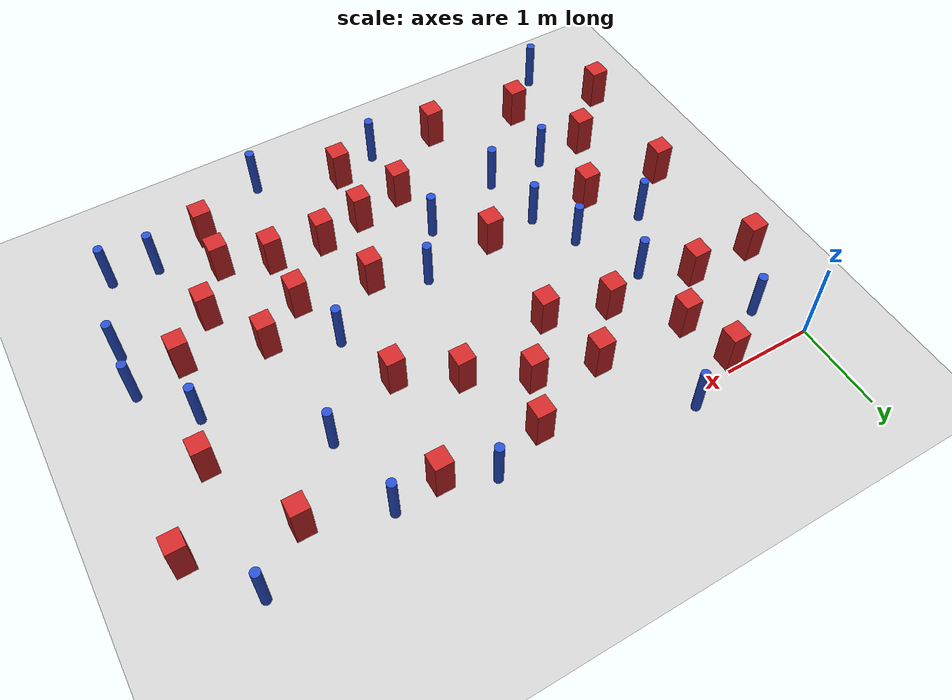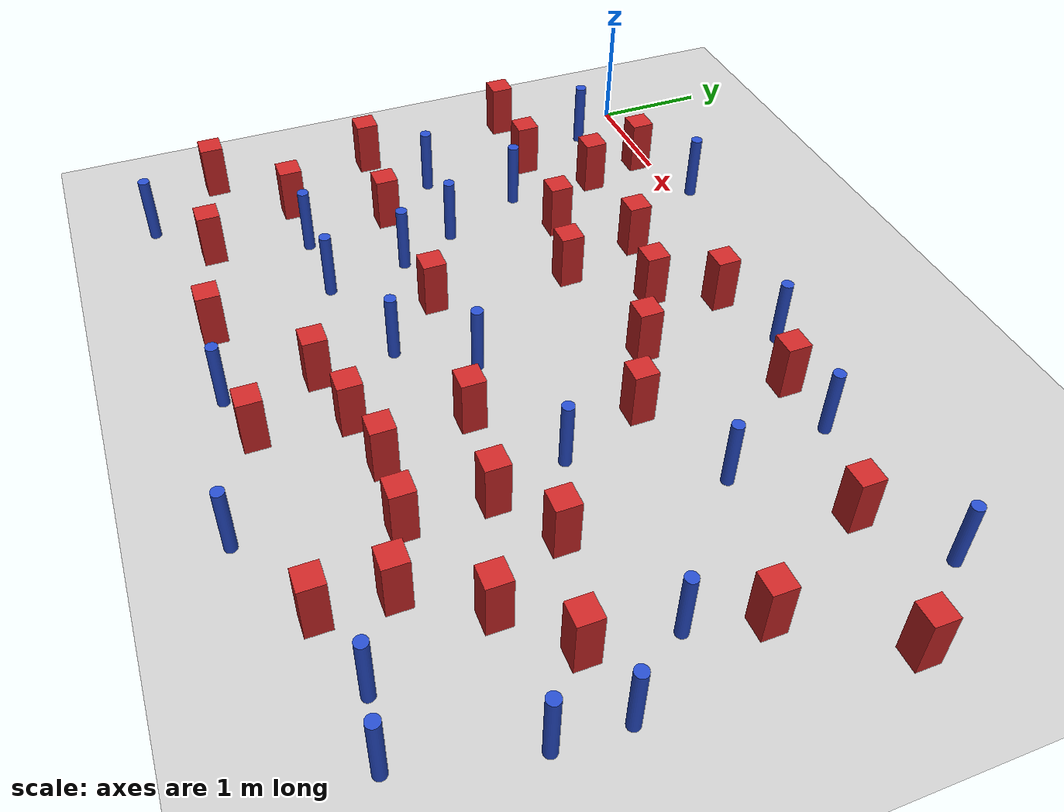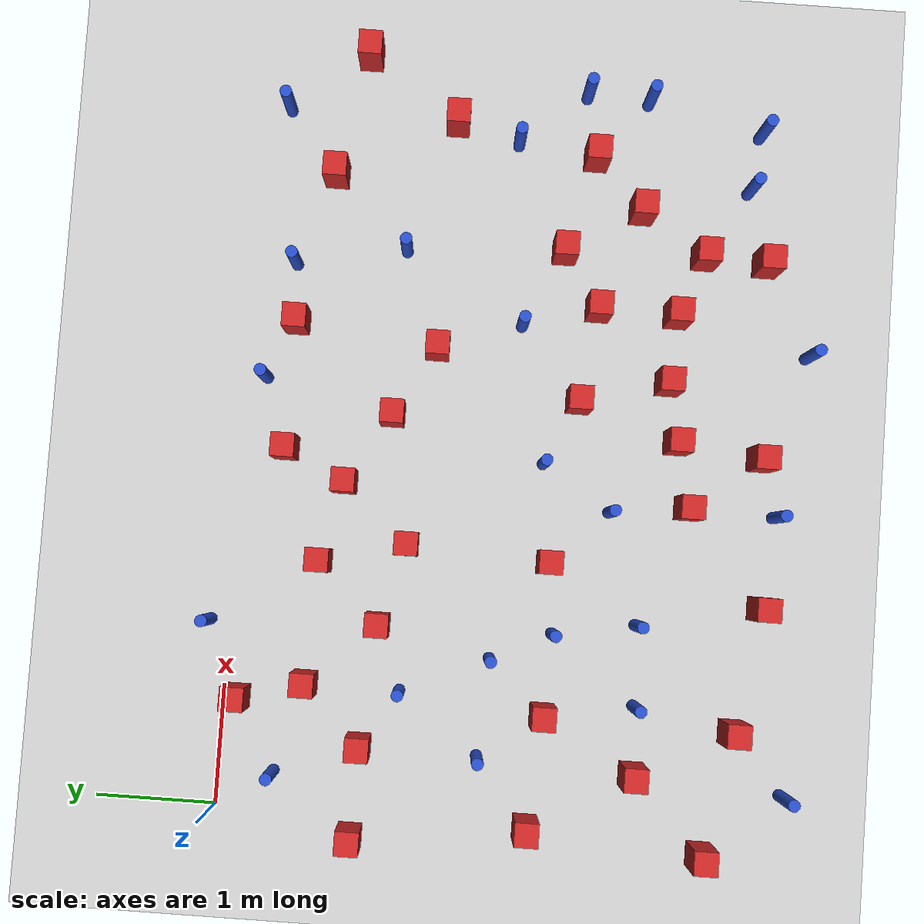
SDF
<sdf version="1.6">
 <world name="default">
  <model name="ground_plane">
   <static>1</static>
   <link name="link">
    <collision name="collision">
     <geometry><plane><normal>0 0 1</normal><size>100 100</size></plane></geometry>
     <surface><friction><ode><mu>100</mu><mu2>50</mu2></ode></friction></surface>
    </collision>
    <visual name="visual">
     <cast_shadows>0</cast_shadows>
     <geometry><plane><normal>0 0 1</normal><size>100 100</size></plane></geometry>
     <material>
      <ambient>1.0 1.0 1.0 1.0</ambient>
      <diffuse>0.8 0.8 0.8 1.0</diffuse>
      <specular>0.01 0.01 0.01 1.000000</specular>
     </material>
    </visual>
   </link>
  </model>
  <model name="NamedLocations">
   <static>true</static>
   <link name="DefaultStart"><pose>8.5 0 0 0 0 3.14</pose></link>
  </model>
  <model name="square_post_obstacle3">
   <static>true</static>
   <pose>2.75395827223 -3.80384737645 1.91545236811e-07 -7.35059704564e-06 1.12565212e-07 2.39332434364e-05</pose>
   <link name="link">
    <pose>0 0 0.25 0 -0 0</pose>
    <inertial>
     <mass>100</mass>
     <inertia>
      <ixx>0.166667</ixx>
      <ixy>0</ixy>
      <ixz>0</ixz>
      <iyy>0.166667</iyy>
      <iyz>0</iyz>
      <izz>0.166667</izz>
     </inertia>
    </inertial>
    <collision name="collision"><geometry><box><size>.2 .2 .5</size></box></geometry></collision>
    <visual name="visual">
     <geometry><box><size>.2 .2 .5</size></box></geometry>
     <material>
      <script><name>Gazebo/Red</name><uri>file://media/materials/scripts/gazebo.material</uri></script>
     </material>
    </visual>
   </link>
  </model>
  <model name="pole_obstacle3">
   <static>true</static>
   <pose>1.05317652892 -1.47863244414 7.38925637345e-09 -8.471706928e-08 1.24976765079e-08 -1.74513093017e-07</pose>
   <link name="link">
    <pose>0 0 0.3 0 -0 0</pose>
    <inertial>
     <mass>1</mass>
     <inertia><ixx>0.145833</ixx><ixy>0</ixy><ixz>0</ixz><iyy>0.145833</iyy><iyz>0</iyz><izz>0.125</izz></inertia>
    </inertial>
    <collision name="collision">
     <geometry><cylinder><radius>0.05</radius><length>.6</length></cylinder></geometry>
    </collision>
    <visual name="visual">
     <geometry><cylinder><radius>0.05</radius><length>.6</length></cylinder></geometry>
     <material>
      <script><name>Gazebo/Blue</name><uri>file://media/materials/scripts/gazebo.material</uri></script>
     </material>
    </visual>
   </link>
  </model>
  <model name="square_post_obstacle14">
   <static>true</static>
   <pose>-0.126441259786 -4.07254027726 1.91545236811e-07 -7.35059704564e-06 1.12565212e-07 2.39332434364e-05</pose>
   <link name="link">
    <pose>0 0 0.25 0 -0 0</pose>
    <inertial>
     <mass>100</mass>
     <inertia>
      <ixx>0.166667</ixx>
      <ixy>0</ixy>
      <ixz>0</ixz>
      <iyy>0.166667</iyy>
      <iyz>0</iyz>
      <izz>0.166667</izz>
     </inertia>
    </inertial>
    <collision name="collision"><geometry><box><size>.2 .2 .5</size></box></geometry></collision>
    <visual name="visual">
     <geometry><box><size>.2 .2 .5</size></box></geometry>
     <material>
      <script><name>Gazebo/Red</name><uri>file://media/materials/scripts/gazebo.material</uri></script>
     </material>
    </visual>
   </link>
  </model>
  <model name="square_post_obstacle16">
   <static>true</static>
   <pose>2.10160960088 -0.730467767537 1.91545236811e-07 -7.35059704564e-06 1.12565212e-07 2.39332434364e-05</pose>
   <link name="link">
    <pose>0 0 0.25 0 -0 0</pose>
    <inertial>
     <mass>100</mass>
     <inertia>
      <ixx>0.166667</ixx>
      <ixy>0</ixy>
      <ixz>0</ixz>
      <iyy>0.166667</iyy>
      <iyz>0</iyz>
      <izz>0.166667</izz>
     </inertia>
    </inertial>
    <collision name="collision"><geometry><box><size>.2 .2 .5</size></box></geometry></collision>
    <visual name="visual">
     <geometry><box><size>.2 .2 .5</size></box></geometry>
     <material>
      <script><name>Gazebo/Red</name><uri>file://media/materials/scripts/gazebo.material</uri></script>
     </material>
    </visual>
   </link>
  </model>
  <model name="pole_obstacle9">
   <static>true</static>
   <pose>4.22010196465 -2.30747923249 7.38925637345e-09 -8.47170692798e-08 1.24976764937e-08 -1.74513093023e-07</pose>
   <link name="link">
    <pose>0 0 0.3 0 -0 0</pose>
    <inertial>
     <mass>1</mass>
     <inertia><ixx>0.145833</ixx><ixy>0</ixy><ixz>0</ixz><iyy>0.145833</iyy><iyz>0</iyz><izz>0.125</izz></inertia>
    </inertial>
    <collision name="collision">
     <geometry><cylinder><radius>0.05</radius><length>.6</length></cylinder></geometry>
    </collision>
    <visual name="visual">
     <geometry><cylinder><radius>0.05</radius><length>.6</length></cylinder></geometry>
     <material>
      <script><name>Gazebo/Blue</name><uri>file://media/materials/scripts/gazebo.material</uri></script>
     </material>
    </visual>
   </link>
  </model>
  <model name="square_post_obstacle20">
   <static>true</static>
   <pose>4.88842204589 -4.35391438542 1.91545236811e-07 -7.35059704564e-06 1.12565212e-07 2.39332434364e-05</pose>
   <link name="link">
    <pose>0 0 0.25 0 -0 0</pose>
    <inertial>
     <mass>100</mass>
     <inertia>
      <ixx>0.166667</ixx>
      <ixy>0</ixy>
      <ixz>0</ixz>
      <iyy>0.166667</iyy>
      <iyz>0</iyz>
      <izz>0.166667</izz>
     </inertia>
    </inertial>
    <collision name="collision"><geometry><box><size>.2 .2 .5</size></box></geometry></collision>
    <visual name="visual">
     <geometry><box><size>.2 .2 .5</size></box></geometry>
     <material>
      <script><name>Gazebo/Red</name><uri>file://media/materials/scripts/gazebo.material</uri></script>
     </material>
    </visual>
   </link>
  </model>
  <model name="pole_obstacle14">
   <static>true</static>
   <pose>1.62010785951 -2.73099493347 7.38925637345e-09 -8.47170692799e-08 1.24976765053e-08 -1.74513093017e-07</pose>
   <link name="link">
    <pose>0 0 0.3 0 -0 0</pose>
    <inertial>
     <mass>1</mass>
     <inertia><ixx>0.145833</ixx><ixy>0</ixy><ixz>0</ixz><iyy>0.145833</iyy><iyz>0</iyz><izz>0.125</izz></inertia>
    </inertial>
    <collision name="collision">
     <geometry><cylinder><radius>0.05</radius><length>.6</length></cylinder></geometry>
    </collision>
    <visual name="visual">
     <geometry><cylinder><radius>0.05</radius><length>.6</length></cylinder></geometry>
     <material>
      <script><name>Gazebo/Blue</name><uri>file://media/materials/scripts/gazebo.material</uri></script>
     </material>
    </visual>
   </link>
  </model>
  <model name="square_post_obstacle29">
   <static>true</static>
   <pose>2.28679880018 -1.4551265204 1.91545236811e-07 -7.35059704564e-06 1.12565212e-07 2.39332434364e-05</pose>
   <link name="link">
    <pose>0 0 0.25 0 -0 0</pose>
    <inertial>
     <mass>100</mass>
     <inertia>
      <ixx>0.166667</ixx>
      <ixy>0</ixy>
      <ixz>0</ixz>
      <iyy>0.166667</iyy>
      <iyz>0</iyz>
      <izz>0.166667</izz>
     </inertia>
    </inertial>
    <collision name="collision"><geometry><box><size>.2 .2 .5</size></box></geometry></collision>
    <visual name="visual">
     <geometry><box><size>.2 .2 .5</size></box></geometry>
     <material>
      <script><name>Gazebo/Red</name><uri>file://media/materials/scripts/gazebo.material</uri></script>
     </material>
    </visual>
   </link>
  </model>
  <model name="square_post_obstacle30">
   <static>true</static>
   <pose>3.59892521705 -2.82433107518 1.91545236811e-07 -7.35059704564e-06 1.12565212e-07 2.39332434364e-05</pose>
   <link name="link">
    <pose>0 0 0.25 0 -0 0</pose>
    <inertial>
     <mass>100</mass>
     <inertia>
      <ixx>0.166667</ixx>
      <ixy>0</ixy>
      <ixz>0</ixz>
      <iyy>0.166667</iyy>
      <iyz>0</iyz>
      <izz>0.166667</izz>
     </inertia>
    </inertial>
    <collision name="collision"><geometry><box><size>.2 .2 .5</size></box></geometry></collision>
    <visual name="visual">
     <geometry><box><size>.2 .2 .5</size></box></geometry>
     <material>
      <script><name>Gazebo/Red</name><uri>file://media/materials/scripts/gazebo.material</uri></script>
     </material>
    </visual>
   </link>
  </model>
  <model name="square_post_obstacle45">
   <static>true</static>
   <pose>4.40279567524 -2.94008610002 1.91545236811e-07 -7.35059704564e-06 1.12565212e-07 2.39332434364e-05</pose>
   <link name="link">
    <pose>0 0 0.25 0 -0 0</pose>
    <inertial>
     <mass>100</mass>
     <inertia>
      <ixx>0.166667</ixx>
      <ixy>0</ixy>
      <ixz>0</ixz>
      <iyy>0.166667</iyy>
      <iyz>0</iyz>
      <izz>0.166667</izz>
     </inertia>
    </inertial>
    <collision name="collision"><geometry><box><size>.2 .2 .5</size></box></geometry></collision>
    <visual name="visual">
     <geometry><box><size>.2 .2 .5</size></box></geometry>
     <material>
      <script><name>Gazebo/Red</name><uri>file://media/materials/scripts/gazebo.material</uri></script>
     </material>
    </visual>
   </link>
  </model>
  <model name="square_post_obstacle47">
   <static>true</static>
   <pose>3.21047288335 -4.40014790419 1.91545236811e-07 -7.35059704564e-06 1.12565212e-07 2.39332434364e-05</pose>
   <link name="link">
    <pose>0 0 0.25 0 -0 0</pose>
    <inertial>
     <mass>100</mass>
     <inertia>
      <ixx>0.166667</ixx>
      <ixy>0</ixy>
      <ixz>0</ixz>
      <iyy>0.166667</iyy>
      <iyz>0</iyz>
      <izz>0.166667</izz>
     </inertia>
    </inertial>
    <collision name="collision"><geometry><box><size>.2 .2 .5</size></box></geometry></collision>
    <visual name="visual">
     <geometry><box><size>.2 .2 .5</size></box></geometry>
     <material>
      <script><name>Gazebo/Red</name><uri>file://media/materials/scripts/gazebo.material</uri></script>
     </material>
    </visual>
   </link>
  </model>
  <model name="pole_obstacle54">
   <static>true</static>
   <pose>0.40254618389 -4.73265599026 7.38925637345e-09 -8.471706928e-08 1.24976765079e-08 -1.74513093015e-07</pose>
   <link name="link">
    <pose>0 0 0.3 0 -0 0</pose>
    <inertial>
     <mass>1</mass>
     <inertia><ixx>0.145833</ixx><ixy>0</ixy><ixz>0</ixz><iyy>0.145833</iyy><iyz>0</iyz><izz>0.125</izz></inertia>
    </inertial>
    <collision name="collision">
     <geometry><cylinder><radius>0.05</radius><length>.6</length></cylinder></geometry>
    </collision>
    <visual name="visual">
     <geometry><cylinder><radius>0.05</radius><length>.6</length></cylinder></geometry>
     <material>
      <script><name>Gazebo/Blue</name><uri>file://media/materials/scripts/gazebo.material</uri></script>
     </material>
    </visual>
   </link>
  </model>
  <model name="square_post_obstacle61">
   <static>true</static>
   <pose>3.30429058306 -3.67918713361 1.91545236811e-07 -7.35059704564e-06 1.12565212e-07 2.39332434364e-05</pose>
   <link name="link">
    <pose>0 0 0.25 0 -0 0</pose>
    <inertial>
     <mass>100</mass>
     <inertia>
      <ixx>0.166667</ixx>
      <ixy>0</ixy>
      <ixz>0</ixz>
      <iyy>0.166667</iyy>
      <iyz>0</iyz>
      <izz>0.166667</izz>
     </inertia>
    </inertial>
    <collision name="collision"><geometry><box><size>.2 .2 .5</size></box></geometry></collision>
    <visual name="visual">
     <geometry><box><size>.2 .2 .5</size></box></geometry>
     <material>
      <script><name>Gazebo/Red</name><uri>file://media/materials/scripts/gazebo.material</uri></script>
     </material>
    </visual>
   </link>
  </model>
  <model name="square_post_obstacle63">
   <static>true</static>
   <pose>4.8823091956 -2.62463507751 1.91545236811e-07 -7.35059704564e-06 1.12565212e-07 2.39332434364e-05</pose>
   <link name="link">
    <pose>0 0 0.25 0 -0 0</pose>
    <inertial>
     <mass>100</mass>
     <inertia>
      <ixx>0.166667</ixx>
      <ixy>0</ixy>
      <ixz>0</ixz>
      <iyy>0.166667</iyy>
      <iyz>0</iyz>
      <izz>0.166667</izz>
     </inertia>
    </inertial>
    <collision name="collision"><geometry><box><size>.2 .2 .5</size></box></geometry></collision>
    <visual name="visual">
     <geometry><box><size>.2 .2 .5</size></box></geometry>
     <material>
      <script><name>Gazebo/Red</name><uri>file://media/materials/scripts/gazebo.material</uri></script>
     </material>
    </visual>
   </link>
  </model>
  <model name="pole_obstacle61">
   <static>true</static>
   <pose>1.06151670254 -3.45658894401 7.38925637345e-09 -8.47170692799e-08 1.24976765053e-08 -1.74513093017e-07</pose>
   <link name="link">
    <pose>0 0 0.3 0 -0 0</pose>
    <inertial>
     <mass>1</mass>
     <inertia><ixx>0.145833</ixx><ixy>0</ixy><ixz>0</ixz><iyy>0.145833</iyy><iyz>0</iyz><izz>0.125</izz></inertia>
    </inertial>
    <collision name="collision">
     <geometry><cylinder><radius>0.05</radius><length>.6</length></cylinder></geometry>
    </collision>
    <visual name="visual">
     <geometry><cylinder><radius>0.05</radius><length>.6</length></cylinder></geometry>
     <material>
      <script><name>Gazebo/Blue</name><uri>file://media/materials/scripts/gazebo.material</uri></script>
     </material>
    </visual>
   </link>
  </model>
  <model name="pole_obstacle78">
   <static>true</static>
   <pose>6.00725913123 -4.2516068617 7.38925637345e-09 -8.47170692796e-08 1.24976764786e-08 -1.74513093032e-07</pose>
   <link name="link">
    <pose>0 0 0.3 0 -0 0</pose>
    <inertial>
     <mass>1</mass>
     <inertia><ixx>0.145833</ixx><ixy>0</ixy><ixz>0</ixz><iyy>0.145833</iyy><iyz>0</iyz><izz>0.125</izz></inertia>
    </inertial>
    <collision name="collision">
     <geometry><cylinder><radius>0.05</radius><length>.6</length></cylinder></geometry>
    </collision>
    <visual name="visual">
     <geometry><cylinder><radius>0.05</radius><length>.6</length></cylinder></geometry>
     <material>
      <script><name>Gazebo/Blue</name><uri>file://media/materials/scripts/gazebo.material</uri></script>
     </material>
    </visual>
   </link>
  </model>
  <model name="pole_obstacle80">
   <static>true</static>
   <pose>2.67661399163 -3.15027102554 7.38925637345e-09 -8.47170692798e-08 1.24976764939e-08 -1.74513093025e-07</pose>
   <link name="link">
    <pose>0 0 0.3 0 -0 0</pose>
    <inertial>
     <mass>1</mass>
     <inertia><ixx>0.145833</ixx><ixy>0</ixy><ixz>0</ixz><iyy>0.145833</iyy><iyz>0</iyz><izz>0.125</izz></inertia>
    </inertial>
    <collision name="collision">
     <geometry><cylinder><radius>0.05</radius><length>.6</length></cylinder></geometry>
    </collision>
    <visual name="visual">
     <geometry><cylinder><radius>0.05</radius><length>.6</length></cylinder></geometry>
     <material>
      <script><name>Gazebo/Blue</name><uri>file://media/materials/scripts/gazebo.material</uri></script>
     </material>
    </visual>
   </link>
  </model>
  <model name="square_post_obstacle81">
   <static>true</static>
   <pose>3.80647697238 -3.57520616381 1.91545236811e-07 -7.35059704564e-06 1.12565212e-07 2.39332434364e-05</pose>
   <link name="link">
    <pose>0 0 0.25 0 -0 0</pose>
    <inertial>
     <mass>100</mass>
     <inertia>
      <ixx>0.166667</ixx>
      <ixy>0</ixy>
      <ixz>0</ixz>
      <iyy>0.166667</iyy>
      <iyz>0</iyz>
      <izz>0.166667</izz>
     </inertia>
    </inertial>
    <collision name="collision"><geometry><box><size>.2 .2 .5</size></box></geometry></collision>
    <visual name="visual">
     <geometry><box><size>.2 .2 .5</size></box></geometry>
     <material>
      <script><name>Gazebo/Red</name><uri>file://media/materials/scripts/gazebo.material</uri></script>
     </material>
    </visual>
   </link>
  </model>
  <model name="pole_obstacle88">
   <static>true</static>
   <pose>3.62582252791 -0.160647659627 7.38925637345e-09 -8.471706928e-08 1.24976765208e-08 -1.7451309301e-07</pose>
   <link name="link">
    <pose>0 0 0.3 0 -0 0</pose>
    <inertial>
     <mass>1</mass>
     <inertia><ixx>0.145833</ixx><ixy>0</ixy><ixz>0</ixz><iyy>0.145833</iyy><iyz>0</iyz><izz>0.125</izz></inertia>
    </inertial>
    <collision name="collision">
     <geometry><cylinder><radius>0.05</radius><length>.6</length></cylinder></geometry>
    </collision>
    <visual name="visual">
     <geometry><cylinder><radius>0.05</radius><length>.6</length></cylinder></geometry>
     <material>
      <script><name>Gazebo/Blue</name><uri>file://media/materials/scripts/gazebo.material</uri></script>
     </material>
    </visual>
   </link>
  </model>
  <model name="square_post_obstacle82">
   <static>true</static>
   <pose>6.47311847507 -0.852878946086 1.91545236811e-07 -7.35059704564e-06 1.12565212e-07 2.39332434364e-05</pose>
   <link name="link">
    <pose>0 0 0.25 0 -0 0</pose>
    <inertial>
     <mass>100</mass>
     <inertia>
      <ixx>0.166667</ixx>
      <ixy>0</ixy>
      <ixz>0</ixz>
      <iyy>0.166667</iyy>
      <iyz>0</iyz>
      <izz>0.166667</izz>
     </inertia>
    </inertial>
    <collision name="collision"><geometry><box><size>.2 .2 .5</size></box></geometry></collision>
    <visual name="visual">
     <geometry><box><size>.2 .2 .5</size></box></geometry>
     <material>
      <script><name>Gazebo/Red</name><uri>file://media/materials/scripts/gazebo.material</uri></script>
     </material>
    </visual>
   </link>
  </model>
  <model name="square_post_obstacle83">
   <static>true</static>
   <pose>5.41593569924 -0.632262099924 1.91545236811e-07 -7.35059704564e-06 1.12565212e-07 2.39332434364e-05</pose>
   <link name="link">
    <pose>0 0 0.25 0 -0 0</pose>
    <inertial>
     <mass>100</mass>
     <inertia>
      <ixx>0.166667</ixx>
      <ixy>0</ixy>
      <ixz>0</ixz>
      <iyy>0.166667</iyy>
      <iyz>0</iyz>
      <izz>0.166667</izz>
     </inertia>
    </inertial>
    <collision name="collision"><geometry><box><size>.2 .2 .5</size></box></geometry></collision>
    <visual name="visual">
     <geometry><box><size>.2 .2 .5</size></box></geometry>
     <material>
      <script><name>Gazebo/Red</name><uri>file://media/materials/scripts/gazebo.material</uri></script>
     </material>
    </visual>
   </link>
  </model>
  <model name="pole_obstacle104">
   <static>true</static>
   <pose>3.05050505265 -2.56427551376 7.38925637345e-09 -8.47170692798e-08 1.24976764939e-08 -1.74513093025e-07</pose>
   <link name="link">
    <pose>0 0 0.3 0 -0 0</pose>
    <inertial>
     <mass>1</mass>
     <inertia><ixx>0.145833</ixx><ixy>0</ixy><ixz>0</ixz><iyy>0.145833</iyy><iyz>0</iyz><izz>0.125</izz></inertia>
    </inertial>
    <collision name="collision">
     <geometry><cylinder><radius>0.05</radius><length>.6</length></cylinder></geometry>
    </collision>
    <visual name="visual">
     <geometry><cylinder><radius>0.05</radius><length>.6</length></cylinder></geometry>
     <material>
      <script><name>Gazebo/Blue</name><uri>file://media/materials/scripts/gazebo.material</uri></script>
     </material>
    </visual>
   </link>
  </model>
  <model name="square_post_obstacle93">
   <static>true</static>
   <pose>-0.00147185129505 -2.60536252672 1.91545236811e-07 -7.35059704564e-06 1.12565212e-07 2.39332434364e-05</pose>
   <link name="link">
    <pose>0 0 0.25 0 -0 0</pose>
    <inertial>
     <mass>100</mass>
     <inertia>
      <ixx>0.166667</ixx>
      <ixy>0</ixy>
      <ixz>0</ixz>
      <iyy>0.166667</iyy>
      <iyz>0</iyz>
      <izz>0.166667</izz>
     </inertia>
    </inertial>
    <collision name="collision"><geometry><box><size>.2 .2 .5</size></box></geometry></collision>
    <visual name="visual">
     <geometry><box><size>.2 .2 .5</size></box></geometry>
     <material>
      <script><name>Gazebo/Red</name><uri>file://media/materials/scripts/gazebo.material</uri></script>
     </material>
    </visual>
   </link>
  </model>
  <model name="pole_obstacle112">
   <static>true</static>
   <pose>4.79962670155 -1.27875734468 7.38925637345e-09 -8.471706928e-08 1.24976765134e-08 -1.74513093015e-07</pose>
   <link name="link">
    <pose>0 0 0.3 0 -0 0</pose>
    <inertial>
     <mass>1</mass>
     <inertia><ixx>0.145833</ixx><ixy>0</ixy><ixz>0</ixz><iyy>0.145833</iyy><iyz>0</iyz><izz>0.125</izz></inertia>
    </inertial>
    <collision name="collision">
     <geometry><cylinder><radius>0.05</radius><length>.6</length></cylinder></geometry>
    </collision>
    <visual name="visual">
     <geometry><cylinder><radius>0.05</radius><length>.6</length></cylinder></geometry>
     <material>
      <script><name>Gazebo/Blue</name><uri>file://media/materials/scripts/gazebo.material</uri></script>
     </material>
    </visual>
   </link>
  </model>
  <model name="square_post_obstacle105">
   <static>true</static>
   <pose>0.934850646681 -2.68833035858 1.91545236811e-07 -7.35059704564e-06 1.12565212e-07 2.39332434364e-05</pose>
   <link name="link">
    <pose>0 0 0.25 0 -0 0</pose>
    <inertial>
     <mass>100</mass>
     <inertia>
      <ixx>0.166667</ixx>
      <ixy>0</ixy>
      <ixz>0</ixz>
      <iyy>0.166667</iyy>
      <iyz>0</iyz>
      <izz>0.166667</izz>
     </inertia>
    </inertial>
    <collision name="collision"><geometry><box><size>.2 .2 .5</size></box></geometry></collision>
    <visual name="visual">
     <geometry><box><size>.2 .2 .5</size></box></geometry>
     <material>
      <script><name>Gazebo/Red</name><uri>file://media/materials/scripts/gazebo.material</uri></script>
     </material>
    </visual>
   </link>
  </model>
  <model name="square_post_obstacle106">
   <static>true</static>
   <pose>3.37673102108 -1.26089611449 1.91545236811e-07 -7.35059704564e-06 1.12565212e-07 2.39332434364e-05</pose>
   <link name="link">
    <pose>0 0 0.25 0 -0 0</pose>
    <inertial>
     <mass>100</mass>
     <inertia>
      <ixx>0.166667</ixx>
      <ixy>0</ixy>
      <ixz>0</ixz>
      <iyy>0.166667</iyy>
      <iyz>0</iyz>
      <izz>0.166667</izz>
     </inertia>
    </inertial>
    <collision name="collision"><geometry><box><size>.2 .2 .5</size></box></geometry></collision>
    <visual name="visual">
     <geometry><box><size>.2 .2 .5</size></box></geometry>
     <material>
      <script><name>Gazebo/Red</name><uri>file://media/materials/scripts/gazebo.material</uri></script>
     </material>
    </visual>
   </link>
  </model>
  <model name="pole_obstacle132">
   <static>true</static>
   <pose>1.54226629726 0.156424571578 7.38925637345e-09 -8.471706928e-08 1.24976765118e-08 -1.74513093013e-07</pose>
   <link name="link">
    <pose>0 0 0.3 0 -0 0</pose>
    <inertial>
     <mass>1</mass>
     <inertia><ixx>0.145833</ixx><ixy>0</ixy><ixz>0</ixz><iyy>0.145833</iyy><iyz>0</iyz><izz>0.125</izz></inertia>
    </inertial>
    <collision name="collision">
     <geometry><cylinder><radius>0.05</radius><length>.6</length></cylinder></geometry>
    </collision>
    <visual name="visual">
     <geometry><cylinder><radius>0.05</radius><length>.6</length></cylinder></geometry>
     <material>
      <script><name>Gazebo/Blue</name><uri>file://media/materials/scripts/gazebo.material</uri></script>
     </material>
    </visual>
   </link>
  </model>
  <model name="pole_obstacle136">
   <static>true</static>
   <pose>6.25748823067 -2.74227425131 7.38925637345e-09 -8.47170692798e-08 1.24976764937e-08 -1.74513093023e-07</pose>
   <link name="link">
    <pose>0 0 0.3 0 -0 0</pose>
    <inertial>
     <mass>1</mass>
     <inertia><ixx>0.145833</ixx><ixy>0</ixy><ixz>0</ixz><iyy>0.145833</iyy><iyz>0</iyz><izz>0.125</izz></inertia>
    </inertial>
    <collision name="collision">
     <geometry><cylinder><radius>0.05</radius><length>.6</length></cylinder></geometry>
    </collision>
    <visual name="visual">
     <geometry><cylinder><radius>0.05</radius><length>.6</length></cylinder></geometry>
     <material>
      <script><name>Gazebo/Blue</name><uri>file://media/materials/scripts/gazebo.material</uri></script>
     </material>
    </visual>
   </link>
  </model>
  <model name="square_post_obstacle119">
   <static>true</static>
   <pose>1.59783580984 -1.26061010599 1.91545236811e-07 -7.35059704564e-06 1.12565212e-07 2.39332434364e-05</pose>
   <link name="link">
    <pose>0 0 0.25 0 -0 0</pose>
    <inertial>
     <mass>100</mass>
     <inertia>
      <ixx>0.166667</ixx>
      <ixy>0</ixy>
      <ixz>0</ixz>
      <iyy>0.166667</iyy>
      <iyz>0</iyz>
      <izz>0.166667</izz>
     </inertia>
    </inertial>
    <collision name="collision"><geometry><box><size>.2 .2 .5</size></box></geometry></collision>
    <visual name="visual">
     <geometry><box><size>.2 .2 .5</size></box></geometry>
     <material>
      <script><name>Gazebo/Red</name><uri>file://media/materials/scripts/gazebo.material</uri></script>
     </material>
    </visual>
   </link>
  </model>
  <model name="square_post_obstacle120">
   <static>true</static>
   <pose>3.97312632959 -1.60023943931 1.91545236811e-07 -7.35059704564e-06 1.12565212e-07 2.39332434364e-05</pose>
   <link name="link">
    <pose>0 0 0.25 0 -0 0</pose>
    <inertial>
     <mass>100</mass>
     <inertia>
      <ixx>0.166667</ixx>
      <ixy>0</ixy>
      <ixz>0</ixz>
      <iyy>0.166667</iyy>
      <iyz>0</iyz>
      <izz>0.166667</izz>
     </inertia>
    </inertial>
    <collision name="collision"><geometry><box><size>.2 .2 .5</size></box></geometry></collision>
    <visual name="visual">
     <geometry><box><size>.2 .2 .5</size></box></geometry>
     <material>
      <script><name>Gazebo/Red</name><uri>file://media/materials/scripts/gazebo.material</uri></script>
     </material>
    </visual>
   </link>
  </model>
  <model name="square_post_obstacle125">
   <static>true</static>
   <pose>4.91516569489 -3.82140965831 1.91545236811e-07 -7.35059704564e-06 1.12565212e-07 2.39332434364e-05</pose>
   <link name="link">
    <pose>0 0 0.25 0 -0 0</pose>
    <inertial>
     <mass>100</mass>
     <inertia>
      <ixx>0.166667</ixx>
      <ixy>0</ixy>
      <ixz>0</ixz>
      <iyy>0.166667</iyy>
      <iyz>0</iyz>
      <izz>0.166667</izz>
     </inertia>
    </inertial>
    <collision name="collision"><geometry><box><size>.2 .2 .5</size></box></geometry></collision>
    <visual name="visual">
     <geometry><box><size>.2 .2 .5</size></box></geometry>
     <material>
      <script><name>Gazebo/Red</name><uri>file://media/materials/scripts/gazebo.material</uri></script>
     </material>
    </visual>
   </link>
  </model>
  <model name="square_post_obstacle129">
   <static>true</static>
   <pose>4.11748170014 -0.388991673728 1.91545236811e-07 -7.35059704564e-06 1.12565212e-07 2.39332434364e-05</pose>
   <link name="link">
    <pose>0 0 0.25 0 -0 0</pose>
    <inertial>
     <mass>100</mass>
     <inertia>
      <ixx>0.166667</ixx>
      <ixy>0</ixy>
      <ixz>0</ixz>
      <iyy>0.166667</iyy>
      <iyz>0</iyz>
      <izz>0.166667</izz>
     </inertia>
    </inertial>
    <collision name="collision"><geometry><box><size>.2 .2 .5</size></box></geometry></collision>
    <visual name="visual">
     <geometry><box><size>.2 .2 .5</size></box></geometry>
     <material>
      <script><name>Gazebo/Red</name><uri>file://media/materials/scripts/gazebo.material</uri></script>
     </material>
    </visual>
   </link>
  </model>
  <model name="pole_obstacle142">
   <static>true</static>
   <pose>4.11247169071 -4.75531017231 7.38925637345e-09 -8.47170692796e-08 1.24976764786e-08 -1.74513093032e-07</pose>
   <link name="link">
    <pose>0 0 0.3 0 -0 0</pose>
    <inertial>
     <mass>1</mass>
     <inertia><ixx>0.145833</ixx><ixy>0</ixy><ixz>0</ixz><iyy>0.145833</iyy><iyz>0</iyz><izz>0.125</izz></inertia>
    </inertial>
    <collision name="collision">
     <geometry><cylinder><radius>0.05</radius><length>.6</length></cylinder></geometry>
    </collision>
    <visual name="visual">
     <geometry><cylinder><radius>0.05</radius><length>.6</length></cylinder></geometry>
     <material>
      <script><name>Gazebo/Blue</name><uri>file://media/materials/scripts/gazebo.material</uri></script>
     </material>
    </visual>
   </link>
  </model>
  <model name="square_post_obstacle131">
   <static>true</static>
   <pose>0.917299690091 -0.123818863768 1.91545236811e-07 -7.35059704564e-06 1.12565212e-07 2.39332434364e-05</pose>
   <link name="link">
    <pose>0 0 0.25 0 -0 0</pose>
    <inertial>
     <mass>100</mass>
     <inertia>
      <ixx>0.166667</ixx>
      <ixy>0</ixy>
      <ixz>0</ixz>
      <iyy>0.166667</iyy>
      <iyz>0</iyz>
      <izz>0.166667</izz>
     </inertia>
    </inertial>
    <collision name="collision"><geometry><box><size>.2 .2 .5</size></box></geometry></collision>
    <visual name="visual">
     <geometry><box><size>.2 .2 .5</size></box></geometry>
     <material>
      <script><name>Gazebo/Red</name><uri>file://media/materials/scripts/gazebo.material</uri></script>
     </material>
    </visual>
   </link>
  </model>
  <model name="square_post_obstacle133">
   <static>true</static>
   <pose>1.95138076602 -4.47429494351 1.91545236811e-07 -7.35059704564e-06 1.12565212e-07 2.39332434364e-05</pose>
   <link name="link">
    <pose>0 0 0.25 0 -0 0</pose>
    <inertial>
     <mass>100</mass>
     <inertia>
      <ixx>0.166667</ixx>
      <ixy>0</ixy>
      <ixz>0</ixz>
      <iyy>0.166667</iyy>
      <iyz>0</iyz>
      <izz>0.166667</izz>
     </inertia>
    </inertial>
    <collision name="collision"><geometry><box><size>.2 .2 .5</size></box></geometry></collision>
    <visual name="visual">
     <geometry><box><size>.2 .2 .5</size></box></geometry>
     <material>
      <script><name>Gazebo/Red</name><uri>file://media/materials/scripts/gazebo.material</uri></script>
     </material>
    </visual>
   </link>
  </model>
  <model name="square_post_obstacle135">
   <static>true</static>
   <pose>2.21608066735 -2.66289339956 1.91545236811e-07 -7.35059704564e-06 1.12565212e-07 2.39332434364e-05</pose>
   <link name="link">
    <pose>0 0 0.25 0 -0 0</pose>
    <inertial>
     <mass>100</mass>
     <inertia>
      <ixx>0.166667</ixx>
      <ixy>0</ixy>
      <ixz>0</ixz>
      <iyy>0.166667</iyy>
      <iyz>0</iyz>
      <izz>0.166667</izz>
     </inertia>
    </inertial>
    <collision name="collision"><geometry><box><size>.2 .2 .5</size></box></geometry></collision>
    <visual name="visual">
     <geometry><box><size>.2 .2 .5</size></box></geometry>
     <material>
      <script><name>Gazebo/Red</name><uri>file://media/materials/scripts/gazebo.material</uri></script>
     </material>
    </visual>
   </link>
  </model>
  <model name="pole_obstacle148">
   <static>true</static>
   <pose>1.73933575272 -3.43365108058 7.38925637345e-09 -8.47170692799e-08 1.24976765053e-08 -1.74513093017e-07</pose>
   <link name="link">
    <pose>0 0 0.3 0 -0 0</pose>
    <inertial>
     <mass>1</mass>
     <inertia><ixx>0.145833</ixx><ixy>0</ixy><ixz>0</ixz><iyy>0.145833</iyy><iyz>0</iyz><izz>0.125</izz></inertia>
    </inertial>
    <collision name="collision">
     <geometry><cylinder><radius>0.05</radius><length>.6</length></cylinder></geometry>
    </collision>
    <visual name="visual">
     <geometry><cylinder><radius>0.05</radius><length>.6</length></cylinder></geometry>
     <material>
      <script><name>Gazebo/Blue</name><uri>file://media/materials/scripts/gazebo.material</uri></script>
     </material>
    </visual>
   </link>
  </model>
  <model name="pole_obstacle149">
   <static>true</static>
   <pose>0.310776948277 -0.469590292686 7.38925637345e-09 -8.47170692799e-08 1.24976765028e-08 -1.7451309302e-07</pose>
   <link name="link">
    <pose>0 0 0.3 0 -0 0</pose>
    <inertial>
     <mass>1</mass>
     <inertia><ixx>0.145833</ixx><ixy>0</ixy><ixz>0</ixz><iyy>0.145833</iyy><iyz>0</iyz><izz>0.125</izz></inertia>
    </inertial>
    <collision name="collision">
     <geometry><cylinder><radius>0.05</radius><length>.6</length></cylinder></geometry>
    </collision>
    <visual name="visual">
     <geometry><cylinder><radius>0.05</radius><length>.6</length></cylinder></geometry>
     <material>
      <script><name>Gazebo/Blue</name><uri>file://media/materials/scripts/gazebo.material</uri></script>
     </material>
    </visual>
   </link>
  </model>
  <model name="square_post_obstacle141">
   <static>true</static>
   <pose>5.27652478983 -3.26358522522 1.91545236811e-07 -7.35059704564e-06 1.12565212e-07 2.39332434364e-05</pose>
   <link name="link">
    <pose>0 0 0.25 0 -0 0</pose>
    <inertial>
     <mass>100</mass>
     <inertia>
      <ixx>0.166667</ixx>
      <ixy>0</ixy>
      <ixz>0</ixz>
      <iyy>0.166667</iyy>
      <iyz>0</iyz>
      <izz>0.166667</izz>
     </inertia>
    </inertial>
    <collision name="collision"><geometry><box><size>.2 .2 .5</size></box></geometry></collision>
    <visual name="visual">
     <geometry><box><size>.2 .2 .5</size></box></geometry>
     <material>
      <script><name>Gazebo/Red</name><uri>file://media/materials/scripts/gazebo.material</uri></script>
     </material>
    </visual>
   </link>
  </model>
  <model name="square_post_obstacle144">
   <static>true</static>
   <pose>5.94254764857 -1.63935198025 1.91545236811e-07 -7.35059704564e-06 1.12565212e-07 2.39332434364e-05</pose>
   <link name="link">
    <pose>0 0 0.25 0 -0 0</pose>
    <inertial>
     <mass>100</mass>
     <inertia>
      <ixx>0.166667</ixx>
      <ixy>0</ixy>
      <ixz>0</ixz>
      <iyy>0.166667</iyy>
      <iyz>0</iyz>
      <izz>0.166667</izz>
     </inertia>
    </inertial>
    <collision name="collision"><geometry><box><size>.2 .2 .5</size></box></geometry></collision>
    <visual name="visual">
     <geometry><box><size>.2 .2 .5</size></box></geometry>
     <material>
      <script><name>Gazebo/Red</name><uri>file://media/materials/scripts/gazebo.material</uri></script>
     </material>
    </visual>
   </link>
  </model>
  <model name="square_post_obstacle151">
   <static>true</static>
   <pose>3.03144145629 -0.376539509753 1.91545236811e-07 -7.35059704564e-06 1.12565212e-07 2.39332434364e-05</pose>
   <link name="link">
    <pose>0 0 0.25 0 -0 0</pose>
    <inertial>
     <mass>100</mass>
     <inertia>
      <ixx>0.166667</ixx>
      <ixy>0</ixy>
      <ixz>0</ixz>
      <iyy>0.166667</iyy>
      <iyz>0</iyz>
      <izz>0.166667</izz>
     </inertia>
    </inertial>
    <collision name="collision"><geometry><box><size>.2 .2 .5</size></box></geometry></collision>
    <visual name="visual">
     <geometry><box><size>.2 .2 .5</size></box></geometry>
     <material>
      <script><name>Gazebo/Red</name><uri>file://media/materials/scripts/gazebo.material</uri></script>
     </material>
    </visual>
   </link>
  </model>
  <model name="pole_obstacle158">
   <static>true</static>
   <pose>5.79849722565 -2.1765889874 7.38925637345e-09 -8.47170692798e-08 1.24976764937e-08 -1.74513093023e-07</pose>
   <link name="link">
    <pose>0 0 0.3 0 -0 0</pose>
    <inertial>
     <mass>1</mass>
     <inertia><ixx>0.145833</ixx><ixy>0</ixy><ixz>0</ixz><iyy>0.145833</iyy><iyz>0</iyz><izz>0.125</izz></inertia>
    </inertial>
    <collision name="collision">
     <geometry><cylinder><radius>0.05</radius><length>.6</length></cylinder></geometry>
    </collision>
    <visual name="visual">
     <geometry><cylinder><radius>0.05</radius><length>.6</length></cylinder></geometry>
     <material>
      <script><name>Gazebo/Blue</name><uri>file://media/materials/scripts/gazebo.material</uri></script>
     </material>
    </visual>
   </link>
  </model>
  <model name="pole_obstacle174">
   <static>true</static>
   <pose>6.23507854644 -3.27416656835 7.38925637345e-09 -8.47170692798e-08 1.24976764937e-08 -1.74513093023e-07</pose>
   <link name="link">
    <pose>0 0 0.3 0 -0 0</pose>
    <inertial>
     <mass>1</mass>
     <inertia><ixx>0.145833</ixx><ixy>0</ixy><ixz>0</ixz><iyy>0.145833</iyy><iyz>0</iyz><izz>0.125</izz></inertia>
    </inertial>
    <collision name="collision">
     <geometry><cylinder><radius>0.05</radius><length>.6</length></cylinder></geometry>
    </collision>
    <visual name="visual">
     <geometry><cylinder><radius>0.05</radius><length>.6</length></cylinder></geometry>
     <material>
      <script><name>Gazebo/Blue</name><uri>file://media/materials/scripts/gazebo.material</uri></script>
     </material>
    </visual>
   </link>
  </model>
  <model name="pole_obstacle176">
   <static>true</static>
   <pose>5.96790737995 -0.189027697161 7.38925637345e-09 -8.471706928e-08 1.24976765151e-08 -1.74513093014e-07</pose>
   <link name="link">
    <pose>0 0 0.3 0 -0 0</pose>
    <inertial>
     <mass>1</mass>
     <inertia><ixx>0.145833</ixx><ixy>0</ixy><ixz>0</ixz><iyy>0.145833</iyy><iyz>0</iyz><izz>0.125</izz></inertia>
    </inertial>
    <collision name="collision">
     <geometry><cylinder><radius>0.05</radius><length>.6</length></cylinder></geometry>
    </collision>
    <visual name="visual">
     <geometry><cylinder><radius>0.05</radius><length>.6</length></cylinder></geometry>
     <material>
      <script><name>Gazebo/Blue</name><uri>file://media/materials/scripts/gazebo.material</uri></script>
     </material>
    </visual>
   </link>
  </model>
  <model name="square_post_obstacle166">
   <static>true</static>
   <pose>-0.175412125615 -1.15027391879 1.91545236811e-07 -7.35059704564e-06 1.12565212e-07 2.39332434364e-05</pose>
   <link name="link">
    <pose>0 0 0.25 0 -0 0</pose>
    <inertial>
     <mass>100</mass>
     <inertia>
      <ixx>0.166667</ixx>
      <ixy>0</ixy>
      <ixz>0</ixz>
      <iyy>0.166667</iyy>
      <iyz>0</iyz>
      <izz>0.166667</izz>
     </inertia>
    </inertial>
    <collision name="collision"><geometry><box><size>.2 .2 .5</size></box></geometry></collision>
    <visual name="visual">
     <geometry><box><size>.2 .2 .5</size></box></geometry>
     <material>
      <script><name>Gazebo/Red</name><uri>file://media/materials/scripts/gazebo.material</uri></script>
     </material>
    </visual>
   </link>
  </model>
  <model name="square_post_obstacle171">
   <static>true</static>
   <pose>1.06849671405 -0.68447508609 1.91545236811e-07 -7.35059704564e-06 1.12565212e-07 2.39332434364e-05</pose>
   <link name="link">
    <pose>0 0 0.25 0 -0 0</pose>
    <inertial>
     <mass>100</mass>
     <inertia>
      <ixx>0.166667</ixx>
      <ixy>0</ixy>
      <ixz>0</ixz>
      <iyy>0.166667</iyy>
      <iyz>0</iyz>
      <izz>0.166667</izz>
     </inertia>
    </inertial>
    <collision name="collision"><geometry><box><size>.2 .2 .5</size></box></geometry></collision>
    <visual name="visual">
     <geometry><box><size>.2 .2 .5</size></box></geometry>
     <material>
      <script><name>Gazebo/Red</name><uri>file://media/materials/scripts/gazebo.material</uri></script>
     </material>
    </visual>
   </link>
  </model>
  <model name="square_post_obstacle189">
   <static>true</static>
   <pose>4.39256311157 -3.6141994348 1.91545236811e-07 -7.35059704564e-06 1.12565212e-07 2.39332434364e-05</pose>
   <link name="link">
    <pose>0 0 0.25 0 -0 0</pose>
    <inertial>
     <mass>100</mass>
     <inertia>
      <ixx>0.166667</ixx>
      <ixy>0</ixy>
      <ixz>0</ixz>
      <iyy>0.166667</iyy>
      <iyz>0</iyz>
      <izz>0.166667</izz>
     </inertia>
    </inertial>
    <collision name="collision"><geometry><box><size>.2 .2 .5</size></box></geometry></collision>
    <visual name="visual">
     <geometry><box><size>.2 .2 .5</size></box></geometry>
     <material>
      <script><name>Gazebo/Red</name><uri>file://media/materials/scripts/gazebo.material</uri></script>
     </material>
    </visual>
   </link>
  </model>
  <model name="square_post_obstacle192">
   <static>true</static>
   <pose>2.77758360641 -0.896607069195 1.91545236811e-07 -7.35059704564e-06 1.12565212e-07 2.39332434364e-05</pose>
   <link name="link">
    <pose>0 0 0.25 0 -0 0</pose>
    <inertial>
     <mass>100</mass>
     <inertia>
      <ixx>0.166667</ixx>
      <ixy>0</ixy>
      <ixz>0</ixz>
      <iyy>0.166667</iyy>
      <iyz>0</iyz>
      <izz>0.166667</izz>
     </inertia>
    </inertial>
    <collision name="collision"><geometry><box><size>.2 .2 .5</size></box></geometry></collision>
    <visual name="visual">
     <geometry><box><size>.2 .2 .5</size></box></geometry>
     <material>
      <script><name>Gazebo/Red</name><uri>file://media/materials/scripts/gazebo.material</uri></script>
     </material>
    </visual>
   </link>
  </model>
  <model name="square_post_obstacle197">
   <static>true</static>
   <pose>0.576476866421 -1.17310648448 1.91545236811e-07 -7.35059704564e-06 1.12565212e-07 2.39332434364e-05</pose>
   <link name="link">
    <pose>0 0 0.25 0 -0 0</pose>
    <inertial>
     <mass>100</mass>
     <inertia>
      <ixx>0.166667</ixx>
      <ixy>0</ixy>
      <ixz>0</ixz>
      <iyy>0.166667</iyy>
      <iyz>0</iyz>
      <izz>0.166667</izz>
     </inertia>
    </inertial>
    <collision name="collision"><geometry><box><size>.2 .2 .5</size></box></geometry></collision>
    <visual name="visual">
     <geometry><box><size>.2 .2 .5</size></box></geometry>
     <material>
      <script><name>Gazebo/Red</name><uri>file://media/materials/scripts/gazebo.material</uri></script>
     </material>
    </visual>
   </link>
  </model>
  <model name="pole_obstacle192">
   <static>true</static>
   <pose>5.51143789725 -4.17839921395 7.38925637345e-09 -8.47170692796e-08 1.24976764786e-08 -1.74513093032e-07</pose>
   <link name="link">
    <pose>0 0 0.3 0 -0 0</pose>
    <inertial>
     <mass>1</mass>
     <inertia><ixx>0.145833</ixx><ixy>0</ixy><ixz>0</ixz><iyy>0.145833</iyy><iyz>0</iyz><izz>0.125</izz></inertia>
    </inertial>
    <collision name="collision">
     <geometry><cylinder><radius>0.05</radius><length>.6</length></cylinder></geometry>
    </collision>
    <visual name="visual">
     <geometry><cylinder><radius>0.05</radius><length>.6</length></cylinder></geometry>
     <material>
      <script><name>Gazebo/Blue</name><uri>file://media/materials/scripts/gazebo.material</uri></script>
     </material>
    </visual>
   </link>
  </model>
  <model name="square_post_obstacle204">
   <static>true</static>
   <pose>5.71716582597 -2.84584209214 1.91545236811e-07 -7.35059704564e-06 1.12565212e-07 2.39332434364e-05</pose>
   <link name="link">
    <pose>0 0 0.25 0 -0 0</pose>
    <inertial>
     <mass>100</mass>
     <inertia>
      <ixx>0.166667</ixx>
      <ixy>0</ixy>
      <ixz>0</ixz>
      <iyy>0.166667</iyy>
      <iyz>0</iyz>
      <izz>0.166667</izz>
     </inertia>
    </inertial>
    <collision name="collision"><geometry><box><size>.2 .2 .5</size></box></geometry></collision>
    <visual name="visual">
     <geometry><box><size>.2 .2 .5</size></box></geometry>
     <material>
      <script><name>Gazebo/Red</name><uri>file://media/materials/scripts/gazebo.material</uri></script>
     </material>
    </visual>
   </link>
  </model>
  <model name="square_post_obstacle205">
   <static>true</static>
   <pose>0.495626666691 -3.46841207971 1.91545236811e-07 -7.35059704564e-06 1.12565212e-07 2.39332434364e-05</pose>
   <link name="link">
    <pose>0 0 0.25 0 -0 0</pose>
    <inertial>
     <mass>100</mass>
     <inertia>
      <ixx>0.166667</ixx>
      <ixy>0</ixy>
      <ixz>0</ixz>
      <iyy>0.166667</iyy>
      <iyz>0</iyz>
      <izz>0.166667</izz>
     </inertia>
    </inertial>
    <collision name="collision"><geometry><box><size>.2 .2 .5</size></box></geometry></collision>
    <visual name="visual">
     <geometry><box><size>.2 .2 .5</size></box></geometry>
     <material>
      <script><name>Gazebo/Red</name><uri>file://media/materials/scripts/gazebo.material</uri></script>
     </material>
    </visual>
   </link>
  </model>
  <model name="square_post_obstacle209">
   <static>true</static>
   <pose>0.907666820005 -4.28639184253 1.91545236811e-07 -7.35059704564e-06 1.12565212e-07 2.39332434364e-05</pose>
   <link name="link">
    <pose>0 0 0.25 0 -0 0</pose>
    <inertial>
     <mass>100</mass>
     <inertia>
      <ixx>0.166667</ixx>
      <ixy>0</ixy>
      <ixz>0</ixz>
      <iyy>0.166667</iyy>
      <iyz>0</iyz>
      <izz>0.166667</izz>
     </inertia>
    </inertial>
    <collision name="collision"><geometry><box><size>.2 .2 .5</size></box></geometry></collision>
    <visual name="visual">
     <geometry><box><size>.2 .2 .5</size></box></geometry>
     <material>
      <script><name>Gazebo/Red</name><uri>file://media/materials/scripts/gazebo.material</uri></script>
     </material>
    </visual>
   </link>
  </model>
  <model name="pole_obstacle204">
   <static>true</static>
   <pose>2.7288581455 -4.54794243954 7.38925637345e-09 -8.47170692798e-08 1.24976765033e-08 -1.74513093019e-07</pose>
   <link name="link">
    <pose>0 0 0.3 0 -0 0</pose>
    <inertial>
     <mass>1</mass>
     <inertia><ixx>0.145833</ixx><ixy>0</ixy><ixz>0</ixz><iyy>0.145833</iyy><iyz>0</iyz><izz>0.125</izz></inertia>
    </inertial>
    <collision name="collision">
     <geometry><cylinder><radius>0.05</radius><length>.6</length></cylinder></geometry>
    </collision>
    <visual name="visual">
     <geometry><cylinder><radius>0.05</radius><length>.6</length></cylinder></geometry>
     <material>
      <script><name>Gazebo/Blue</name><uri>file://media/materials/scripts/gazebo.material</uri></script>
     </material>
    </visual>
   </link>
  </model>
  <model name="pole_obstacle219">
   <static>true</static>
   <pose>0.551887975679 -2.1657182765 7.38925637345e-09 -8.47170692799e-08 1.2497676509e-08 -1.74513093016e-07</pose>
   <link name="link">
    <pose>0 0 0.3 0 -0 0</pose>
    <inertial>
     <mass>1</mass>
     <inertia><ixx>0.145833</ixx><ixy>0</ixy><ixz>0</ixz><iyy>0.145833</iyy><iyz>0</iyz><izz>0.125</izz></inertia>
    </inertial>
    <collision name="collision">
     <geometry><cylinder><radius>0.05</radius><length>.6</length></cylinder></geometry>
    </collision>
    <visual name="visual">
     <geometry><cylinder><radius>0.05</radius><length>.6</length></cylinder></geometry>
     <material>
      <script><name>Gazebo/Blue</name><uri>file://media/materials/scripts/gazebo.material</uri></script>
     </material>
    </visual>
   </link>
  </model>
  <model name="pole_obstacle232">
   <static>true</static>
   <pose>4.62233000957 -0.341339979219 7.38925637345e-09 -8.47170692798e-08 1.24976765003e-08 -1.7451309302e-07</pose>
   <link name="link">
    <pose>0 0 0.3 0 -0 0</pose>
    <inertial>
     <mass>1</mass>
     <inertia><ixx>0.145833</ixx><ixy>0</ixy><ixz>0</ixz><iyy>0.145833</iyy><iyz>0</iyz><izz>0.125</izz></inertia>
    </inertial>
    <collision name="collision">
     <geometry><cylinder><radius>0.05</radius><length>.6</length></cylinder></geometry>
    </collision>
    <visual name="visual">
     <geometry><cylinder><radius>0.05</radius><length>.6</length></cylinder></geometry>
     <material>
      <script><name>Gazebo/Blue</name><uri>file://media/materials/scripts/gazebo.material</uri></script>
     </material>
    </visual>
   </link>
  </model>
  <model name="pole_obstacle234">
   <static>true</static>
   <pose>1.37502000957 -2.21730997922 7.38925637345e-09 -8.47170692793e-08 1.24976764479e-08 -1.74513093037e-07</pose>
   <link name="link">
    <pose>0 0 0.3 0 -0 0</pose>
    <inertial>
     <mass>1</mass>
     <inertia><ixx>0.145833</ixx><ixy>0</ixy><ixz>0</ixz><iyy>0.145833</iyy><iyz>0</iyz><izz>0.125</izz></inertia>
    </inertial>
    <collision name="collision">
     <geometry><cylinder><radius>0.05</radius><length>.6</length></cylinder></geometry>
    </collision>
    <visual name="visual">
     <geometry><cylinder><radius>0.05</radius><length>.6</length></cylinder></geometry>
     <material>
      <script><name>Gazebo/Blue</name><uri>file://media/materials/scripts/gazebo.material</uri></script>
     </material>
    </visual>
   </link>
  </model>
 </world>
</sdf>
